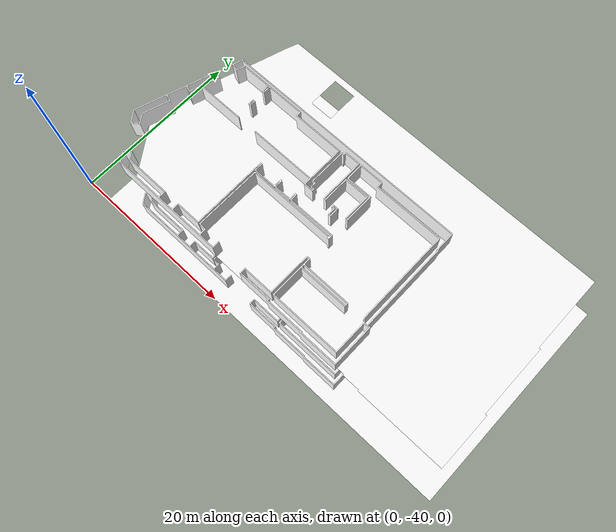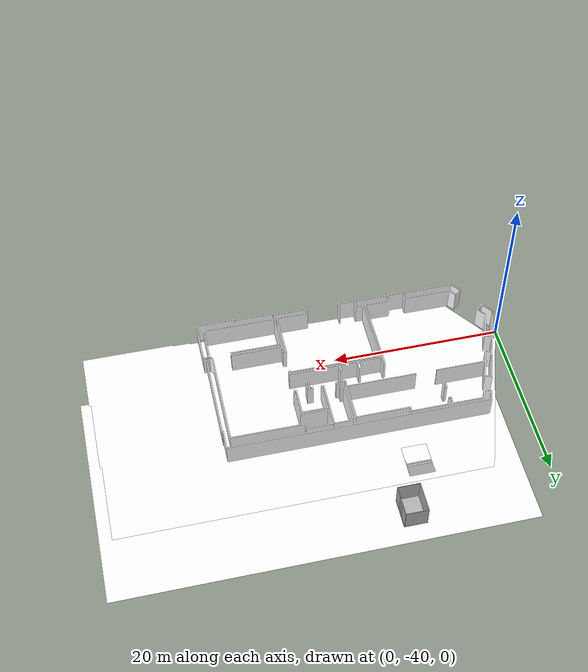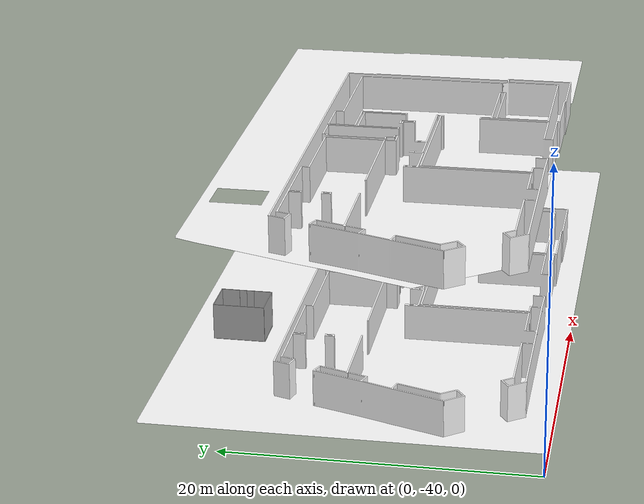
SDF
<sdf version="1.7">
 <world name="sim_world">
  <include><name>nayar2_planta0</name><uri>model://nayar2_planta0</uri></include>
  <include><name>nayar2_planta1</name><uri>model://nayar2_planta1</uri><pose>0 0 10.0 0 0 0</pose></include>
  <model name="lift1">
   <link name="platform">
    <inertial>
     <mass>1200</mass>
     <inertia><ixx>1225.25</ixx><iyy>676.2500000000001</iyy><izz>1901.0000000000002</izz></inertia>
    </inertial>
    <visual name="floor_visual">
     <pose>0 0 -0.025 0 0 0</pose>
     <geometry><box><size>3.5 2.6 0.05</size></box></geometry>
     <material>
      <ambient>0.5 0.5 0.5 1</ambient>
      <diffuse>0.7 0.7 0.7 1</diffuse>
      <specular>0.6 0.6 0.6 1</specular>
      <emissive>0.1 0.1 0.1 1</emissive>
     </material>
    </visual>
    <collision name="floor_collision">
     <pose>0 0 -0.025 0 0 0</pose>
     <geometry><box><size>3.5 2.6 0.05</size></box></geometry>
     <surface><contact><collide_bitmask>0x01</collide_bitmask></contact></surface>
    </collision>
    <visual name="frontwall1_visual">
     <pose>-1.125 1.2750000000000001 1.25 0 0 0</pose>
     <geometry><box><size>1.25 0.05 2.5</size></box></geometry>
     <material>
      <ambient>0.5 0.5 0.5 1</ambient>
      <diffuse>0.7 0.7 0.7 1</diffuse>
      <specular>0.6 0.6 0.6 1</specular>
      <emissive>0.1 0.1 0.1 1</emissive>
     </material>
    </visual>
    <collision name="frontwall1_collision">
     <pose>-1.125 1.2750000000000001 1.25 0 0 0</pose>
     <geometry><box><size>1.25 0.05 2.5</size></box></geometry>
     <surface><contact><collide_bitmask>0x01</collide_bitmask></contact></surface>
    </collision>
    <visual name="frontwall2_visual">
     <pose>1.125 1.2750000000000001 1.25 0 0 0</pose>
     <geometry><box><size>1.25 0.05 2.5</size></box></geometry>
     <material>
      <ambient>0.5 0.5 0.5 1</ambient>
      <diffuse>0.7 0.7 0.7 1</diffuse>
      <specular>0.6 0.6 0.6 1</specular>
      <emissive>0.1 0.1 0.1 1</emissive>
     </material>
    </visual>
    <collision name="frontwall2_collision">
     <pose>1.125 1.2750000000000001 1.25 0 0 0</pose>
     <geometry><box><size>1.25 0.05 2.5</size></box></geometry>
     <surface><contact><collide_bitmask>0x01</collide_bitmask></contact></surface>
    </collision>
    <visual name="backwall1_visual">
     <pose>0.0 -1.2750000000000001 1.25 0 0 0</pose>
     <geometry><box><size>3.5 0.05 2.5</size></box></geometry>
     <material>
      <ambient>0.5 0.5 0.5 1</ambient>
      <diffuse>0.7 0.7 0.7 1</diffuse>
      <specular>0.6 0.6 0.6 1</specular>
      <emissive>0.1 0.1 0.1 1</emissive>
     </material>
    </visual>
    <collision name="backwall1_collision">
     <pose>0.0 -1.2750000000000001 1.25 0 0 0</pose>
     <geometry><box><size>3.5 0.05 2.5</size></box></geometry>
     <surface><contact><collide_bitmask>0x01</collide_bitmask></contact></surface>
    </collision>
    <visual name="leftwall1_visual">
     <pose>-1.725 0.0 1.25 0 0 1.5707963267948966</pose>
     <geometry><box><size>2.5 0.05 2.5</size></box></geometry>
     <material>
      <ambient>0.5 0.5 0.5 1</ambient>
      <diffuse>0.7 0.7 0.7 1</diffuse>
      <specular>0.6 0.6 0.6 1</specular>
      <emissive>0.1 0.1 0.1 1</emissive>
     </material>
    </visual>
    <collision name="leftwall1_collision">
     <pose>-1.725 0.0 1.25 0 0 1.5707963267948966</pose>
     <geometry><box><size>2.5 0.05 2.5</size></box></geometry>
     <surface><contact><collide_bitmask>0x01</collide_bitmask></contact></surface>
    </collision>
    <visual name="rightwall1_visual">
     <pose>1.725 0.0 1.25 0 0 1.5707963267948966</pose>
     <geometry><box><size>2.5 0.05 2.5</size></box></geometry>
     <material>
      <ambient>0.5 0.5 0.5 1</ambient>
      <diffuse>0.7 0.7 0.7 1</diffuse>
      <specular>0.6 0.6 0.6 1</specular>
      <emissive>0.1 0.1 0.1 1</emissive>
     </material>
    </visual>
    <collision name="rightwall1_collision">
     <pose>1.725 0.0 1.25 0 0 1.5707963267948966</pose>
     <geometry><box><size>2.5 0.05 2.5</size></box></geometry>
     <surface><contact><collide_bitmask>0x01</collide_bitmask></contact></surface>
    </collision>
   </link>
   <joint name="cabin_joint" type="prismatic">
    <parent>world</parent>
    <child>platform</child>
    <axis><xyz>0 0 1</xyz></axis>
   </joint>
   <model name="CabinDoor_lift1_lift_door">
    <pose>0.0 1.2750000000000001 0 0 0 0.0</pose>
    <link name="right_door">
     <pose>0.25 0 1.25 0 0 0</pose>
     <visual name="right_door_visual">
      <geometry><box><size>0.5 0.03 2.5</size></box></geometry>
      <material>
       <ambient>0.5 0.5 0.5 1</ambient>
       <diffuse>0.7 0.7 0.7 1</diffuse>
       <specular>0.6 0.6 0.6 1</specular>
       <emissive>0.1 0.1 0.1 1</emissive>
      </material>
     </visual>
     <collision name="right_door_collision">
      <geometry><box><size>0.5 0.03 2.5</size></box></geometry>
      <surface><contact><collide_bitmask>0x02</collide_bitmask></contact></surface>
     </collision>
    </link>
    <link name="left_door">
     <pose>-0.25 0 1.25 0 0 0</pose>
     <visual name="left_door_visual">
      <geometry><box><size>0.5 0.03 2.5</size></box></geometry>
      <material>
       <ambient>0.5 0.5 0.5 1</ambient>
       <diffuse>0.7 0.7 0.7 1</diffuse>
       <specular>0.6 0.6 0.6 1</specular>
       <emissive>0.1 0.1 0.1 1</emissive>
      </material>
     </visual>
     <collision name="left_door_collision">
      <geometry><box><size>0.5 0.03 2.5</size></box></geometry>
      <surface><contact><collide_bitmask>0x02</collide_bitmask></contact></surface>
     </collision>
    </link>
    <plugin name="register_component" filename="libregister_component.so">
     <component name="Door">
      <v_max_door>0.3</v_max_door>
      <a_max_door>0.2</a_max_door>
      <a_nom_door>0.1</a_nom_door>
      <dx_min_door>0.0001</dx_min_door>
      <f_max_door>35.0</f_max_door>
      <door left_joint_name="CabinDoor_lift1_lift_door_left_joint" name="CabinDoor_lift1_lift_door" right_joint_name="CabinDoor_lift1_lift_door_right_joint" type="DoubleSlidingDoor"/>
     </component>
    </plugin>
   </model>
   <joint name="CabinDoor_lift1_lift_door_right_joint" type="prismatic">
    <parent>platform</parent>
    <child>CabinDoor_lift1_lift_door::right_door</child>
    <axis><xyz>1 0 0</xyz><limit><lower>0</lower><upper>0.5</upper></limit></axis>
   </joint>
   <joint name="CabinDoor_lift1_lift_door_left_joint" type="prismatic">
    <parent>platform</parent>
    <child>CabinDoor_lift1_lift_door::left_door</child>
    <axis><xyz>1 0 0</xyz><limit><lower>-0.5</lower><upper>0</upper></limit></axis>
   </joint>
   <plugin name="register_component" filename="libregister_component.so">
    <component name="Lift">
     <lift_name>lift1</lift_name>
     <floor name="planta0" elevation="0.0">
      <door_pair cabin_door="CabinDoor_lift1_lift_door" shaft_door="ShaftDoor_lift1_planta0_lift_door"/>
     </floor>
     <floor name="planta1" elevation="10.0">
      <door_pair cabin_door="CabinDoor_lift1_lift_door" shaft_door="ShaftDoor_lift1_planta1_lift_door"/>
     </floor>
     <initial_floor>planta0</initial_floor>
     <v_max_cabin>2.0</v_max_cabin>
     <a_max_cabin>1.2</a_max_cabin>
     <a_nom_cabin>1.0</a_nom_cabin>
     <dx_min_cabin>0.001</dx_min_cabin>
     <f_max_cabin>25323.0</f_max_cabin>
     <cabin_joint_name>cabin_joint</cabin_joint_name>
    </component>
   </plugin>
   <pose>16.64695992079544 -17.885803449784866 0 0 0 4.71</pose>
  </model>
 </world>
</sdf>
